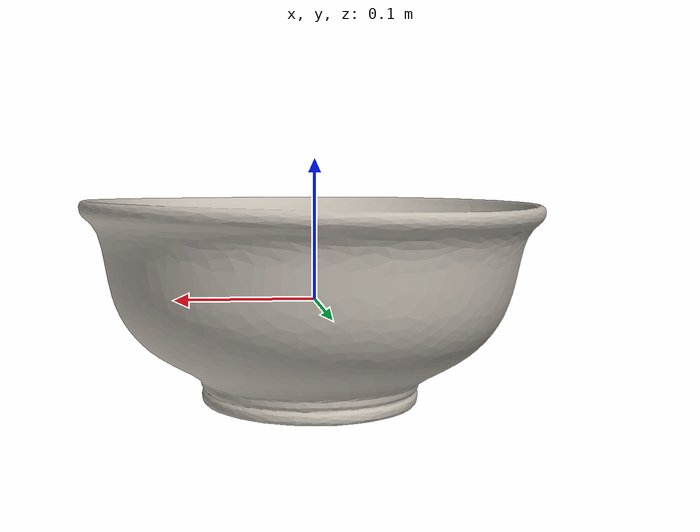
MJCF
<mujoco model="06">
  <default>
    <default class="06/visual">
      <geom group="2" type="mesh" contype="0" conaffinity="0"/>
    </default>
    <default class="06/collision">
      <geom group="3" type="mesh"/>
    </default>
  </default>
  <asset>
    <texture type="2d" name="img6" file="objects/06/img6.png"/>
    <material name="material_0.006" texture="img6" specular="0.0" shininess="0.0"/>
    <mesh file="objects/06/06.obj"/>
  </asset>
  <worldbody>
    <body name="06">
      <joint name="obj06" type="free"/>
      <geom material="material_0.006" mesh="06" class="06/visual"/>
      <geom mesh="06" class="06/collision" mass="0.5"/>
    </body>
  </worldbody>
</mujoco>
